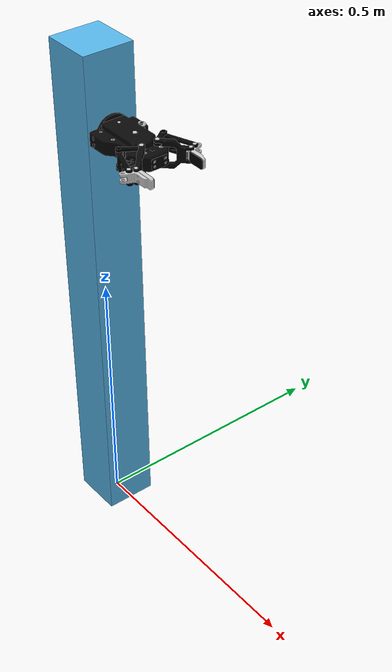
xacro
<?xml version="1.0" ?>

<robot name="gripper" xmlns:xacro="http://ros.org/wiki/xacro">
    <xacro:include filename="$(find gripper)/urdf/gripper.urdf.xacro" />

    <gazebo>
        <plugin name="gazebo_ros_control" filename="libgazebo_ros_control.so">
            <robotNamespace>/</robotNamespace>
            <legacyModeNS>true</legacyModeNS>
        </plugin>
    </gazebo>

    <link name="world"/>
    <joint name="world_fixed" type="fixed">
        <origin xyz="0 0 0" rpy="0 0 0"/>
        <parent link="world"/>
        <child link="gripper_root_link"/>
    </joint>

    <link name="gripper_root_link">
        <visual>
            <origin xyz="0 0 0.5" rpy="0 0 0"/>
            <geometry>
                <box size="0.1 0.1 1.0"/>
            </geometry>
        </visual>
        <collision>
            <origin xyz="0 0 0.5" rpy="0 0 0"/>
            <geometry>
                <box size="0.1 0.1 1.0"/>
            </geometry>
        </collision>
        <inertial>
            <mass value="1e2" />
            <origin xyz="0.0 0.0 0.0" />
            <inertia ixx = "0.000001" ixy = "0.000000" ixz = "0.000000"
                     iyx = "0.000000" iyy = "0.000001" iyz = "0.000000"
                     izx = "0.000000" izy = "0.000000" izz = "0.000001" />
        </inertial>
    </link>

    <xacro:gripper prefix="" parent="gripper_root_link" >
        <origin xyz="0.05 0 0.85" rpy="${pi/2}  0 ${pi/2}"/>
    </xacro:gripper>

</robot>

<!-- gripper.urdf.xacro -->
<robot name="gripper" xmlns:xacro="http://ros.org/wiki/xacro">
    <xacro:include filename="$(find gripper)/urdf/gripper.transmission.xacro" />

    <xacro:macro name="gripper" params="prefix parent *origin">

        <joint name="${prefix}gripper_base_joint" type="fixed">
            <parent link="${parent}"/>
            <child link="${prefix}gripper_base_link"/>
            <xacro:insert_block name="origin"/>
        </joint>

        <link name="${prefix}gripper_base_link">
            <visual>
                <geometry>
                    <mesh filename="package://gripper/meshes/base_link.dae"  />
                </geometry>
            </visual>
            <collision>
                <geometry>
                    <mesh filename="package://gripper/meshes/base_link.dae"  />
                </geometry>
            </collision>
            <inertial>
                <mass value="0.83416" />
                <origin xyz="0.0 0.0 0.0" />
                <inertia ixx = "0.0013016" ixy = "-6.9374e-07" ixz = "5.9848e-07"
                         iyx = "0.000000" iyy = "0.00049972" iyz = "2.0244E-07"
                         izx = "0.000000" izy = "0.000000" izz = "0.001498" />
            </inertial>
        </link>

        <gazebo reference="${prefix}gripper_base_link">
            <implicitSpringDamper>1</implicitSpringDamper>
            <mu1>100000</mu1>
            <mu2>100000</mu2>
            <kp>100000000.0</kp>
            <kd>1.0</kd>
        </gazebo>

        <joint name="${prefix}gripper_finger1_joint" type="revolute">
            <parent link="${prefix}gripper_base_link"/>
            <child link="${prefix}gripper_finger1_knuckle_link"/>
            <axis xyz="0 -1 0"/>
            <origin rpy="0.0 0.0 ${pi}" xyz="-0.016 0 0.10586"/>
            <limit lower="0.0" upper="0.65" velocity="2.0" effort="1000"/>
        </joint>

        <joint name="${prefix}gripper_finger2_joint" type="revolute">
            <parent link="${prefix}gripper_base_link"/>
            <child link="${prefix}gripper_finger2_knuckle_link"/>
            <axis xyz="0 -1 0"/>
            <origin rpy="0.0 0.0 0.0" xyz="0.016  0 0.10586 "/>
            <limit lower="-3.14" upper="3.14" velocity="100.0" effort="1000"/>
            <mimic joint="${prefix}gripper_finger1_joint"/>
        </joint>

        <link name="${prefix}gripper_finger1_knuckle_link">
            <visual>
                <geometry>
                    <mesh filename="package://gripper/meshes/crank_Link.dae"  />
                </geometry>
            </visual>
            <collision>
                <geometry>
                    <mesh filename="package://gripper/meshes/crank_Link.dae"  />
                </geometry>
            </collision>
            <inertial>
                <mass value="0.011111" />
                <origin xyz="0.0 0.0 0.0" />
                <inertia ixx = "3.88172e-06" ixy = "-2.29456e-13" ixz = "8.33e-07"
                         iyx = "0.000000" iyy = "1.92174e-06" iyz = "2.04435e-13"
                         izx = "0.000000" izy = "0.000000" izz = "4.32374e-06" />
            </inertial>
        </link>

        <gazebo reference="${prefix}gripper_finger1_knuckle_link">
            <implicitSpringDamper>1</implicitSpringDamper>
            <mu1>100000</mu1>
            <mu2>100000</mu2>
            <kp>100000000.0</kp>
            <kd>1.0</kd>
        </gazebo>

        <link name="${prefix}gripper_finger2_knuckle_link">
            <visual>
                <geometry>
                    <mesh filename="package://gripper/meshes/crank_Link.dae"  />
                </geometry>
            </visual>
            <collision>
                <geometry>
                    <mesh filename="package://gripper/meshes/crank_Link.dae"  />
                </geometry>
            </collision>
            <inertial>
                <mass value="0.011111" />
                <origin xyz="0.0 0.0 0.0" />
                <inertia ixx = "3.88172e-06" ixy = "-2.29456e-13" ixz = "8.33e-07"
                         iyx = "0.000000" iyy = "1.92174e-06" iyz = "2.04435e-13"
                         izx = "0.000000" izy = "0.000000" izz = "4.32374e-06" />
            </inertial>
        </link>

        <gazebo reference="${prefix}gripper_finger2_knuckle_link">
            <implicitSpringDamper>1</implicitSpringDamper>
            <mu1>100000</mu1>
            <mu2>100000</mu2>
            <kp>100000000.0</kp>
            <kd>1.0</kd>
        </gazebo>

        <joint name="${prefix}gripper_finger1_finger_joint" type="continuous">
            <parent link="${prefix}gripper_finger1_knuckle_link"/>
            <child link="${prefix}gripper_finger1_finger_link"/>
            <axis xyz="0 -1 0"/>
            <origin xyz="0.0292080077784 0.0 -0.0227132622407" rpy="0 0 0" />
            <limit lower="-3.14" upper="3.14" velocity="100.0" effort="0.1"/>
            <mimic joint="${prefix}gripper_finger1_joint" multiplier="0.4563942" offset="0"/>
        </joint>

        <joint name="${prefix}gripper_finger2_finger_joint" type="continuous">
            <parent link="${prefix}gripper_finger2_knuckle_link"/>
            <child link="${prefix}gripper_finger2_finger_link"/>
            <axis xyz="0 -1 0"/>
            <origin xyz="0.0292080077784 0.0 -0.0227132622407" rpy="0 0 0" />
            <limit lower="-3.14" upper="3.14" velocity="100.0" effort="0.1"/>
            <mimic joint="${prefix}gripper_finger1_joint" multiplier="0.4563942" offset="0"/>
        </joint>

        <link name="${prefix}gripper_finger1_finger_link">
            <visual>
                <geometry>
                    <mesh filename="package://gripper/meshes/rod_Link.dae"  />
                </geometry>
            </visual>
            <collision>
                <geometry>
                    <mesh filename="package://gripper/meshes/rod_Link.dae"  />
                </geometry>
            </collision>
            <inertial>
                <mass value="0.0222871" />
                <origin xyz="0.0 0.0 0.0" />
                <inertia ixx = "8.72836e-06" ixy = "7.0843e-15" ixz = "-2.18833e-06"
                         iyx = "-0.000002" iyy = "7.26157e-06" iyz = "7.6579e-15"
                         izx = "0.000000" izy = "0.000000" izz = "3.3425e-06" />
            </inertial>
        </link>

        <gazebo reference="${prefix}gripper_finger1_finger_link">
            <implicitSpringDamper>1</implicitSpringDamper>
            <mu1>100000</mu1>
            <mu2>100000</mu2>
            <kp>100000000.0</kp>
            <kd>1.0</kd>
        </gazebo>

        <link name="${prefix}gripper_finger2_finger_link">
            <visual>
                <geometry>
                    <mesh filename="package://gripper/meshes/rod_Link.dae"  />
                </geometry>
            </visual>
            <collision>
                <geometry>
                    <mesh filename="package://gripper/meshes/rod_Link.dae"  />
                </geometry>
            </collision>
            <inertial>
                <mass value="0.0222871" />
                <origin xyz="0.0 0.0 0.0" />
                <inertia ixx = "8.72836e-06" ixy = "7.0843e-15" ixz = "-2.18833e-06"
                         iyx = "-0.000002" iyy = "7.26157e-06" iyz = "7.6579e-15"
                         izx = "0.000000" izy = "0.000000" izz = "3.3425e-06" />
            </inertial>
        </link>

        <gazebo reference="${prefix}gripper_finger2_finger_link">
            <implicitSpringDamper>1</implicitSpringDamper>
            <mu1>100000</mu1>
            <mu2>100000</mu2>
            <kp>100000000.0</kp>
            <kd>1.0</kd>
        </gazebo>

        <joint name="${prefix}gripper_finger1_inner_knuckle_joint" type="continuous">
            <parent link="${prefix}gripper_base_link"/>
            <child link="${prefix}gripper_finger1_inner_knuckle_link"/>
            <axis xyz="0 -1 0"/>
            <origin rpy="0.0 0.0 ${pi}" xyz="-0.016 0 0.10586"/>
            <limit lower="-3.14" upper="3.14" velocity="100.0" effort="0.1"/>
            <mimic joint="${prefix}gripper_finger1_joint" multiplier="1.49462955"  offset="0"/>
        </joint>

        <joint name="${prefix}gripper_finger2_inner_knuckle_joint" type="continuous">
            <parent link="${prefix}gripper_base_link"/>
            <child link="${prefix}gripper_finger2_inner_knuckle_link"/>
            <axis xyz="0 -1 0"/>
            <origin rpy="0.0 0.0 0.0" xyz="0.016 0 0.10586"/>
            <limit lower="-3.14" upper="3.14" velocity="100.0" effort="0.1"/>
            <mimic joint="${prefix}gripper_finger1_joint" multiplier="1.49462955" offset="0"/>
        </joint>

        <link name="${prefix}gripper_finger1_inner_knuckle_link">
            <visual>
                <geometry>
                    <mesh filename="package://gripper/meshes/proximal_phalanx_Link.dae"  />
                </geometry>
            </visual>
            <collision>
                <geometry>
                    <mesh filename="package://gripper/meshes/proximal_phalanx_Link.dae"  />
                </geometry>
            </collision>
            <inertial>
                <mass value="0.0318004" />
                <origin xyz="0.0 0.0 0.0" />
                <inertia ixx = "1.39848e-05" ixy = "-9.54763e-15" ixz = "-5.01422e-06"
                         iyx = "0.000000" iyy = "1.04943e-05" iyz = "8.94585e-16"
                         izx = "0.000000" izy = "0.000000" izz = "1.36183e-05" />
            </inertial>
        </link>

        <gazebo reference="${prefix}gripper_finger1_inner_knuckle_link">
            <implicitSpringDamper>1</implicitSpringDamper>
            <mu1>100000</mu1>
            <mu2>100000</mu2>
            <kp>100000000.0</kp>
            <kd>1.0</kd>
        </gazebo>

        <link name="${prefix}gripper_finger2_inner_knuckle_link">
            <visual>
                <geometry>
                    <mesh filename="package://gripper/meshes/proximal_phalanx_Link.dae"  />
                </geometry>
            </visual>
            <collision>
                <geometry>
                    <mesh filename="package://gripper/meshes/proximal_phalanx_Link.dae"  />
                </geometry>
            </collision>
            <inertial>
                <mass value="0.0318004" />
                <origin xyz="0.0 0.0 0.0" />
                <inertia ixx = "1.39848e-05" ixy = "-9.54763e-15" ixz = "-5.01422e-06"
                         iyx = "0.000000" iyy = "1.04943e-05" iyz = "8.94585e-16"
                         izx = "0.000000" izy = "0.000000" izz = "1.36183e-05" />
            </inertial>
        </link>

        <gazebo reference="${prefix}gripper_finger2_inner_knuckle_link">
            <implicitSpringDamper>1</implicitSpringDamper>
            <mu1>100000</mu1>
            <mu2>100000</mu2>
            <kp>100000000.0</kp>
            <kd>1.0</kd>
        </gazebo>

        <joint name="${prefix}gripper_finger1_finger_tip_joint" type="continuous">
            <parent link="${prefix}gripper_finger1_inner_knuckle_link"/>
            <child link="${prefix}gripper_finger1_finger_tip_link"/>
            <axis xyz="0 1 0"/>
            <origin xyz="0.0394969463769 0.0 0.0382752038125 " rpy="0.0 0.0 0.0"/>
            <limit lower="-3.14" upper="3.14" velocity="100.0" effort="0.1"/>
            <mimic joint="${prefix}gripper_finger1_joint" multiplier="1.49462955"/>
        </joint>

        <joint name="${prefix}gripper_finger2_finger_tip_joint" type="continuous">
            <parent link="${prefix}gripper_finger2_inner_knuckle_link"/>
            <child link="${prefix}gripper_finger2_finger_tip_link"/>
            <axis xyz="0 1 0"/>
            <origin rpy="0.0 0.0 0.0" xyz="0.0394969463769  0.0 0.0382752038125  "/>
            <limit lower="-3.14" upper="3.14" velocity="100.0" effort="0.1"/>
            <mimic joint="${prefix}gripper_finger1_joint" multiplier="1.49462955"/>
        </joint>

        <link name="${prefix}gripper_finger1_finger_tip_link">
            <visual>
                <geometry>
                    <mesh filename="package://gripper/meshes/distal_phalanx_Link.dae"  />
                </geometry>
            </visual>
            <collision>
                <geometry>
                    <mesh filename="package://gripper/meshes/distal_phalanx_Link.dae"  />
                </geometry>
            </collision>
            <inertial>
                <mass value="0.0124305" />
                <origin xyz="0.0 0.0 0.0" />
                <inertia ixx = "2.84217e-06" ixy = "-2.48048e-15" ixz = "8.24539e-07"
                         iyx = "0.000000" iyy = "3.03961e-06" iyz = "2.16427e-13"
                         izx = "0.000000" izy = "0.000000" izz = "1.11815e-06" />
            </inertial>
        </link>

        <gazebo reference="${prefix}gripper_finger1_finger_tip_link">
            <implicitSpringDamper>1</implicitSpringDamper>
            <mu1>100000</mu1>
            <mu2>100000</mu2>
            <kp>100000000.0</kp>
            <kd>1.0</kd>
        </gazebo>

        <link name="${prefix}gripper_finger2_finger_tip_link">
            <visual>
                <geometry>
                    <mesh filename="package://gripper/meshes/distal_phalanx_Link.dae" />
                </geometry>
            </visual>
            <collision>
                <geometry>
                    <mesh filename="package://gripper/meshes/distal_phalanx_Link.dae" />
                </geometry>
            </collision>
            <inertial>
                <mass value="0.0124305" />
                <origin xyz="0.0 0.0 0.0" />
                <inertia ixx = "2.84217e-06" ixy = "-2.48048e-15" ixz = "8.24539e-07"
                         iyx = "0.000000" iyy = "3.03961e-06" iyz = "2.16427e-13"
                         izx = "0.000000" izy = "0.000000" izz = "1.11815e-06" />
            </inertial>
        </link>

        <gazebo reference="${prefix}gripper_finger2_finger_tip_link">
            <implicitSpringDamper>1</implicitSpringDamper>
            <mu1>100000</mu1>
            <mu2>100000</mu2>
            <kp>100000000.0</kp>
            <kd>1.0</kd>
        </gazebo>

        <xacro:dh_robotics_ag95_gripper_transmission prefix="${prefix}" />

    </xacro:macro>
</robot>
